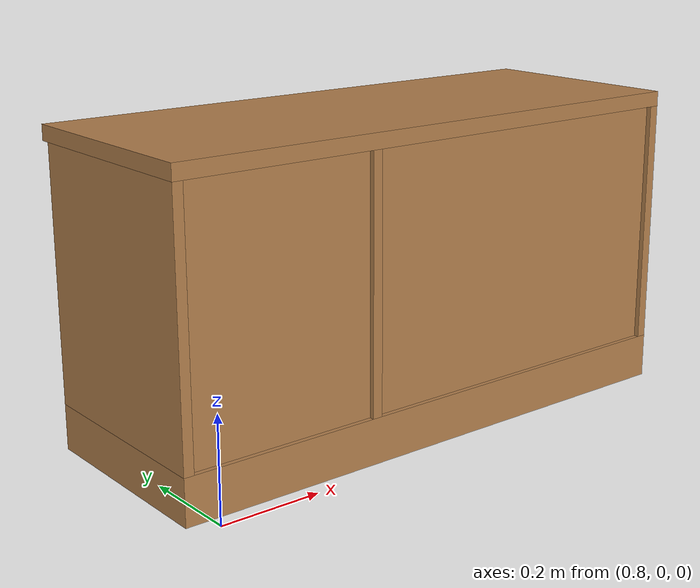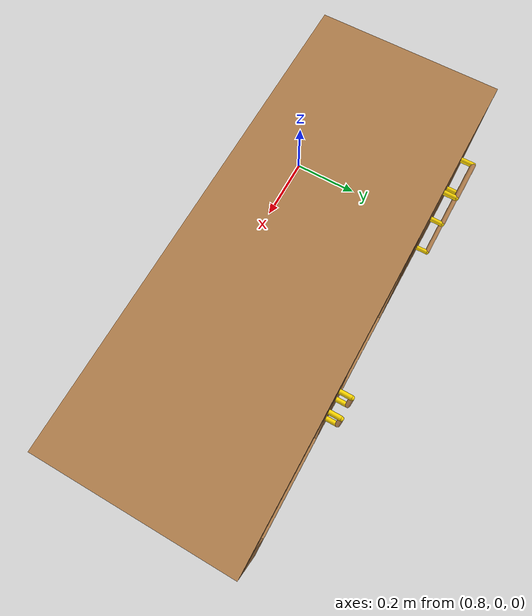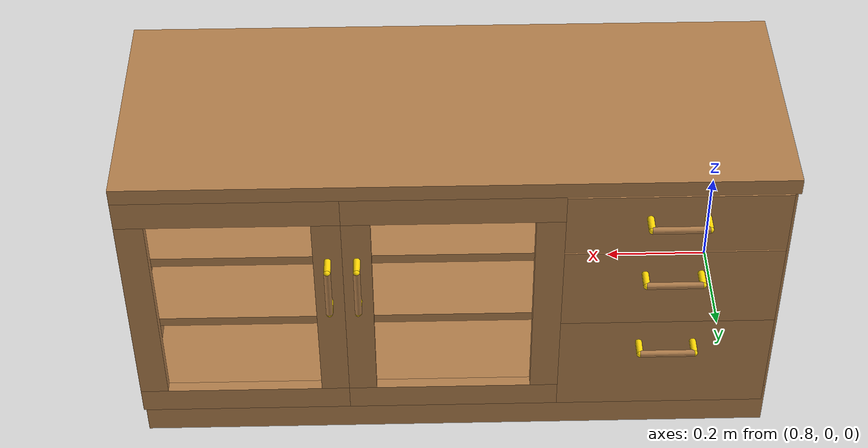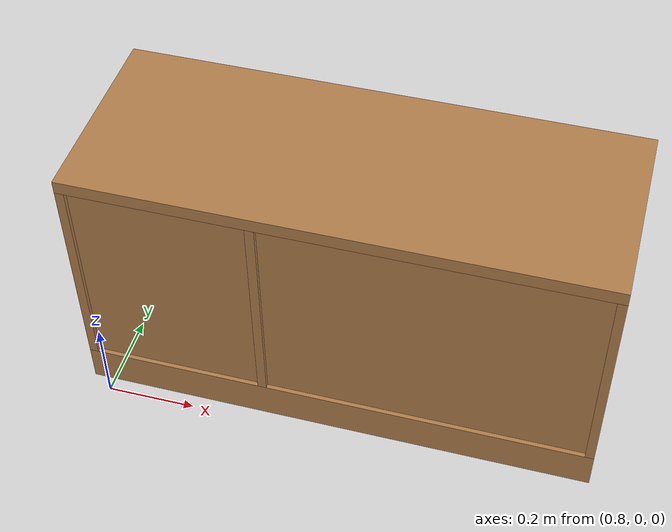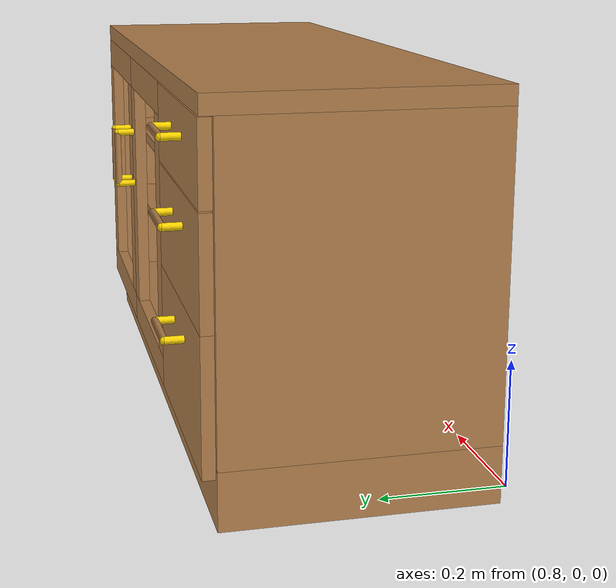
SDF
<sdf version="1.6">
 <world name="default">
  <model name="living_sideboard">
   <link name="body">
    <inertial>
     <mass>10</mass>
     <inertia><ixx>1</ixx><ixy>0</ixy><ixz>0</ixz><iyy>1</iyy><iyz>0</iyz><izz>1</izz></inertia>
    </inertial>
    <visual name="left_board">
     <pose>-0.23 0.01 0.3375 0 -0 0</pose>
     <geometry><box><size>0.42 0.02 0.495</size></box></geometry>
     <material>
      <script><uri>model://base_materials/wood/scripts/wood.material</uri><name>base_materials/wood</name></script>
     </material>
    </visual>
    <collision name="collision_left_board">
     <pose>-0.23 0.01 0.3375 0 -0 0</pose>
     <geometry><box><size>0.42 0.02 0.495</size></box></geometry>
    </collision>
    <visual name="back_board">
     <pose>-0.42 0.575 0.2925 0 -0 0</pose>
     <geometry><box><size>0.02 1.11 0.585</size></box></geometry>
     <material>
      <script><uri>model://base_materials/wood/scripts/wood.material</uri><name>base_materials/wood</name></script>
     </material>
    </visual>
    <collision name="collision_back_board">
     <pose>-0.42 0.575 0.2925 0 -0 0</pose>
     <geometry><box><size>0.02 1.11 0.585</size></box></geometry>
    </collision>
    <visual name="right_board">
     <pose>-0.23 1.14 0.3375 0 -0 0</pose>
     <geometry><box><size>0.42 0.02 0.495</size></box></geometry>
     <material>
      <script><uri>model://base_materials/wood/scripts/wood.material</uri><name>base_materials/wood</name></script>
     </material>
    </visual>
    <collision name="collision_right_board">
     <pose>-0.23 1.14 0.3375 0 -0 0</pose>
     <geometry><box><size>0.42 0.02 0.495</size></box></geometry>
    </collision>
    <visual name="center_vertical_board1">
     <pose>-0.23 0.74 0.3375 0 -0 0</pose>
     <geometry><box><size>0.42 0.02 0.495</size></box></geometry>
     <material>
      <script><uri>model://base_materials/wood/scripts/wood.material</uri><name>base_materials/wood</name></script>
     </material>
    </visual>
    <collision name="collision_center_vertical_board1">
     <pose>-0.23 0.74 0.3375 0 -0 0</pose>
     <geometry><box><size>0.42 0.02 0.495</size></box></geometry>
    </collision>
    <visual name="top_board">
     <pose>-0.22 0.575 0.6 0 -0 0</pose>
     <geometry><box><size>0.44 1.15 0.03</size></box></geometry>
     <material>
      <script><uri>model://base_materials/wood/scripts/wood.material</uri><name>base_materials/wood</name></script>
     </material>
    </visual>
    <collision name="collision_top_board">
     <pose>-0.22 0.575 0.6 0 -0 0</pose>
     <geometry><box><size>0.44 1.15 0.03</size></box></geometry>
    </collision>
    <visual name="bottom_board">
     <pose>-0.23 0.575 0.045 0 -0 0</pose>
     <geometry><box><size>0.42 1.15 0.09</size></box></geometry>
     <material>
      <script><uri>model://base_materials/wood/scripts/wood.material</uri><name>base_materials/wood</name></script>
     </material>
    </visual>
    <collision name="collision_bottom_board">
     <pose>-0.23 0.575 0.045 0 -0 0</pose>
     <geometry><box><size>0.42 1.15 0.09</size></box></geometry>
    </collision>
    <visual name="1st_shelf">
     <pose>-0.225 0.37 0.259 0 -0 0</pose>
     <geometry><box><size>0.36 0.72 0.018</size></box></geometry>
     <material>
      <script><uri>model://base_materials/wood/scripts/wood.material</uri><name>base_materials/wood</name></script>
     </material>
    </visual>
    <collision name="collision_1st_shelf">
     <pose>-0.225 0.37 0.259 0 -0 0</pose>
     <geometry><box><size>0.36 0.72 0.018</size></box></geometry>
    </collision>
    <visual name="2nd_shelf">
     <pose>-0.225 0.37 0.407 0 -0 0</pose>
     <geometry><box><size>0.36 0.72 0.018</size></box></geometry>
     <material>
      <script><uri>model://base_materials/wood/scripts/wood.material</uri><name>base_materials/wood</name></script>
     </material>
    </visual>
    <collision name="collision_2nd_shelf">
     <pose>-0.225 0.37 0.407 0 -0 0</pose>
     <geometry><box><size>0.36 0.72 0.018</size></box></geometry>
    </collision>
    <visual name="2nd_drawer">
     <pose>-0.2025 0.95 0.37 0 -0 0</pose>
     <geometry><box><size>0.405 0.38 0.17</size></box></geometry>
     <material>
      <script><uri>model://base_materials/wood/scripts/wood.material</uri><name>base_materials/wood</name></script>
     </material>
    </visual>
    <collision name="collision_2nd_drawer">
     <pose>-0.2025 0.95 0.37 0 -0 0</pose>
     <geometry><box><size>0.405 0.38 0.17</size></box></geometry>
    </collision>
    <visual name="2nd_drawer_handle_l1">
     <pose>0.015 0.9015 0.405 3.14159 1.57079 3.14159</pose>
     <geometry><cylinder><radius>0.006</radius><length>0.03</length></cylinder></geometry>
     <material>
      <ambient>1 0.84314 0 1</ambient>
      <diffuse>1 0.84314 0 1</diffuse>
      <specular>0.1 0.1 0.1 1</specular>
     </material>
    </visual>
    <collision name="collision_2nd_drawer_handle_l1">
     <pose>0.015 0.9015 0.405 3.14159 1.57079 3.14159</pose>
     <geometry><cylinder><radius>0.006</radius><length>0.03</length></cylinder></geometry>
    </collision>
    <visual name="2nd_drawer_handle_l2">
     <pose>0.03 0.9015 0.405 0 -0 0</pose>
     <geometry><sphere><radius>0.006</radius></sphere></geometry>
     <material>
      <ambient>1 0.84314 0 1</ambient>
      <diffuse>1 0.84314 0 1</diffuse>
      <specular>0.1 0.1 0.1 1</specular>
     </material>
    </visual>
    <collision name="collision_2nd_drawer_handle_l2">
     <pose>0.03 0.9015 0.405 0 -0 0</pose>
     <geometry><sphere><radius>0.006</radius></sphere></geometry>
    </collision>
    <visual name="2nd_drawer_handle_r1">
     <pose>0.015 0.9985 0.405 3.14159 1.57079 3.14159</pose>
     <geometry><cylinder><radius>0.006</radius><length>0.03</length></cylinder></geometry>
     <material>
      <ambient>1 0.84314 0 1</ambient>
      <diffuse>1 0.84314 0 1</diffuse>
      <specular>0.1 0.1 0.1 1</specular>
     </material>
    </visual>
    <collision name="collision_2nd_drawer_handle_r1">
     <pose>0.015 0.9985 0.405 3.14159 1.57079 3.14159</pose>
     <geometry><cylinder><radius>0.006</radius><length>0.03</length></cylinder></geometry>
    </collision>
    <visual name="2nd_drawer_handle_r2">
     <pose>0.03 0.9985 0.405 0 -0 0</pose>
     <geometry><sphere><radius>0.006</radius></sphere></geometry>
     <material>
      <ambient>1 0.84314 0 1</ambient>
      <diffuse>1 0.84314 0 1</diffuse>
      <specular>0.1 0.1 0.1 1</specular>
     </material>
    </visual>
    <collision name="collision_2nd_drawer_handle_r2">
     <pose>0.03 0.9985 0.405 0 -0 0</pose>
     <geometry><sphere><radius>0.006</radius></sphere></geometry>
    </collision>
    <visual name="2nd_drawer_handle_center">
     <pose>0.03 0.95 0.405 1.5708 -0 0</pose>
     <geometry><cylinder><radius>0.006</radius><length>0.097</length></cylinder></geometry>
     <material>
      <script><uri>model://base_materials/wood/scripts/wood.material</uri><name>base_materials/wood</name></script>
     </material>
    </visual>
    <collision name="collision_2nd_drawer_handle_center">
     <pose>0.03 0.95 0.405 1.5708 -0 0</pose>
     <geometry><cylinder><radius>0.006</radius><length>0.097</length></cylinder></geometry>
    </collision>
    <visual name="3rd_drawer">
     <pose>-0.2025 0.95 0.18 0 -0 0</pose>
     <geometry><box><size>0.405 0.38 0.21</size></box></geometry>
     <material>
      <script><uri>model://base_materials/wood/scripts/wood.material</uri><name>base_materials/wood</name></script>
     </material>
    </visual>
    <collision name="collision_3rd_drawer">
     <pose>-0.2025 0.95 0.18 0 -0 0</pose>
     <geometry><box><size>0.405 0.38 0.21</size></box></geometry>
    </collision>
    <visual name="3rd_drawer_handle_l1">
     <pose>0.015 0.9015 0.235 3.14159 1.57079 3.14159</pose>
     <geometry><cylinder><radius>0.006</radius><length>0.03</length></cylinder></geometry>
     <material>
      <ambient>1 0.84314 0 1</ambient>
      <diffuse>1 0.84314 0 1</diffuse>
      <specular>0.1 0.1 0.1 1</specular>
     </material>
    </visual>
    <collision name="collision_3rd_drawer_handle_l1">
     <pose>0.015 0.9015 0.235 3.14159 1.57079 3.14159</pose>
     <geometry><cylinder><radius>0.006</radius><length>0.03</length></cylinder></geometry>
    </collision>
    <visual name="3rd_drawer_handle_l2">
     <pose>0.03 0.9015 0.235 0 -0 0</pose>
     <geometry><sphere><radius>0.006</radius></sphere></geometry>
     <material>
      <ambient>1 0.84314 0 1</ambient>
      <diffuse>1 0.84314 0 1</diffuse>
      <specular>0.1 0.1 0.1 1</specular>
     </material>
    </visual>
    <collision name="collision_3rd_drawer_handle_l2">
     <pose>0.03 0.9015 0.235 0 -0 0</pose>
     <geometry><sphere><radius>0.006</radius></sphere></geometry>
    </collision>
    <visual name="3rd_drawer_handle_r1">
     <pose>0.015 0.9985 0.235 3.14159 1.57079 3.14159</pose>
     <geometry><cylinder><radius>0.006</radius><length>0.03</length></cylinder></geometry>
     <material>
      <ambient>1 0.84314 0 1</ambient>
      <diffuse>1 0.84314 0 1</diffuse>
      <specular>0.1 0.1 0.1 1</specular>
     </material>
    </visual>
    <collision name="collision_3rd_drawer_handle_r1">
     <pose>0.015 0.9985 0.235 3.14159 1.57079 3.14159</pose>
     <geometry><cylinder><radius>0.006</radius><length>0.03</length></cylinder></geometry>
    </collision>
    <visual name="3rd_drawer_handle_r2">
     <pose>0.03 0.9985 0.235 0 -0 0</pose>
     <geometry><sphere><radius>0.006</radius></sphere></geometry>
     <material>
      <ambient>1 0.84314 0 1</ambient>
      <diffuse>1 0.84314 0 1</diffuse>
      <specular>0.1 0.1 0.1 1</specular>
     </material>
    </visual>
    <collision name="collision_3rd_drawer_handle_r2">
     <pose>0.03 0.9985 0.235 0 -0 0</pose>
     <geometry><sphere><radius>0.006</radius></sphere></geometry>
    </collision>
    <visual name="3rd_drawer_handle_center">
     <pose>0.03 0.95 0.235 1.5708 -0 0</pose>
     <geometry><cylinder><radius>0.006</radius><length>0.097</length></cylinder></geometry>
     <material>
      <script><uri>model://base_materials/wood/scripts/wood.material</uri><name>base_materials/wood</name></script>
     </material>
    </visual>
    <collision name="collision_3rd_drawer_handle_center">
     <pose>0.03 0.95 0.235 1.5708 -0 0</pose>
     <geometry><cylinder><radius>0.006</radius><length>0.097</length></cylinder></geometry>
    </collision>
   </link>
   <link name="right_door">
    <visual name="right_door_left_frame">
     <pose>-0.01 0.405 0.3275 0 -0 0</pose>
     <geometry><box><size>0.02 0.05 0.405</size></box></geometry>
     <material>
      <script><uri>model://base_materials/wood/scripts/wood.material</uri><name>base_materials/wood</name></script>
     </material>
    </visual>
    <collision name="collision_right_door_left_frame">
     <pose>-0.01 0.405 0.3275 0 -0 0</pose>
     <geometry><box><size>0.02 0.05 0.405</size></box></geometry>
    </collision>
    <visual name="right_door_right_frame">
     <pose>-0.01 0.735 0.3275 0 -0 0</pose>
     <geometry><box><size>0.02 0.05 0.405</size></box></geometry>
     <material>
      <script><uri>model://base_materials/wood/scripts/wood.material</uri><name>base_materials/wood</name></script>
     </material>
    </visual>
    <collision name="collision_right_door_right_frame">
     <pose>-0.01 0.735 0.3275 0 -0 0</pose>
     <geometry><box><size>0.02 0.05 0.405</size></box></geometry>
    </collision>
    <visual name="right_door_top_frame">
     <pose>-0.01 0.57 0.5575 0 -0 0</pose>
     <geometry><box><size>0.02 0.38 0.055</size></box></geometry>
     <material>
      <script><uri>model://base_materials/wood/scripts/wood.material</uri><name>base_materials/wood</name></script>
     </material>
    </visual>
    <collision name="collision_right_door_top_frame">
     <pose>-0.01 0.57 0.5575 0 -0 0</pose>
     <geometry><box><size>0.02 0.38 0.055</size></box></geometry>
    </collision>
    <visual name="right_door_bottom_frame">
     <pose>-0.01 0.57 0.1 0 -0 0</pose>
     <geometry><box><size>0.02 0.38 0.05</size></box></geometry>
     <material>
      <script><uri>model://base_materials/wood/scripts/wood.material</uri><name>base_materials/wood</name></script>
     </material>
    </visual>
    <collision name="collision_right_door_bottom_frame">
     <pose>-0.01 0.57 0.1 0 -0 0</pose>
     <geometry><box><size>0.02 0.38 0.05</size></box></geometry>
    </collision>
    <visual name="right_door_handle_top1">
     <pose>0.015 0.405 0.4475 3.14159 1.57079 3.14159</pose>
     <geometry><cylinder><radius>0.006</radius><length>0.03</length></cylinder></geometry>
     <material>
      <ambient>1 0.84314 0 1</ambient>
      <diffuse>1 0.84314 0 1</diffuse>
      <specular>0.1 0.1 0.1 1</specular>
     </material>
    </visual>
    <collision name="collision_right_door_handle_top1">
     <pose>0.015 0.405 0.4475 3.14159 1.57079 3.14159</pose>
     <geometry><cylinder><radius>0.006</radius><length>0.03</length></cylinder></geometry>
    </collision>
    <visual name="right_door_handle_top2">
     <pose>0.03 0.405 0.4475 0 -0 0</pose>
     <geometry><sphere><radius>0.006</radius></sphere></geometry>
     <material>
      <ambient>1 0.84314 0 1</ambient>
      <diffuse>1 0.84314 0 1</diffuse>
      <specular>0.1 0.1 0.1 1</specular>
     </material>
    </visual>
    <collision name="collision_right_door_handle_top2">
     <pose>0.03 0.405 0.4475 0 -0 0</pose>
     <geometry><sphere><radius>0.006</radius></sphere></geometry>
    </collision>
    <visual name="right_door_handle_bottom1">
     <pose>0.015 0.405 0.3505 3.14159 1.57079 3.14159</pose>
     <geometry><cylinder><radius>0.006</radius><length>0.03</length></cylinder></geometry>
     <material>
      <ambient>1 0.84314 0 1</ambient>
      <diffuse>1 0.84314 0 1</diffuse>
      <specular>0.1 0.1 0.1 1</specular>
     </material>
    </visual>
    <collision name="collision_right_door_handle_bottom1">
     <pose>0.015 0.405 0.3505 3.14159 1.57079 3.14159</pose>
     <geometry><cylinder><radius>0.006</radius><length>0.03</length></cylinder></geometry>
    </collision>
    <visual name="right_door_handle_bottom2">
     <pose>0.03 0.405 0.3505 0 -0 0</pose>
     <geometry><sphere><radius>0.006</radius></sphere></geometry>
     <material>
      <ambient>1 0.84314 0 1</ambient>
      <diffuse>1 0.84314 0 1</diffuse>
      <specular>0.1 0.1 0.1 1</specular>
     </material>
    </visual>
    <collision name="collision_right_door_handle_bottom2">
     <pose>0.03 0.405 0.3505 0 -0 0</pose>
     <geometry><sphere><radius>0.006</radius></sphere></geometry>
    </collision>
    <visual name="right_door_handle_center">
     <pose>0.03 0.405 0.399 0 -0 0</pose>
     <geometry><cylinder><radius>0.006</radius><length>0.097</length></cylinder></geometry>
     <material>
      <script><uri>model://base_materials/wood/scripts/wood.material</uri><name>base_materials/wood</name></script>
     </material>
    </visual>
    <collision name="collision_right_door_handle_center">
     <pose>0.03 0.4 0.399 0 -0 0</pose>
     <geometry><cylinder><radius>0.006</radius><length>0.097</length></cylinder></geometry>
    </collision>
    <velocity_decay><linear>0</linear><angular>0</angular></velocity_decay>
    <inertial>
     <inertia><ixx>1</ixx><ixy>0</ixy><ixz>0</ixz><iyy>1</iyy><iyz>0</iyz><izz>1</izz></inertia>
     <mass>1</mass>
    </inertial>
   </link>
   <link name="left_door">
    <visual name="left_door_left_frame">
     <pose>-0.01 0.025 0.3275 0 -0 0</pose>
     <geometry><box><size>0.02 0.05 0.405</size></box></geometry>
     <material>
      <script><uri>model://base_materials/wood/scripts/wood.material</uri><name>base_materials/wood</name></script>
     </material>
    </visual>
    <collision name="collision_left_door_left_frame">
     <pose>-0.01 0.025 0.3275 0 -0 0</pose>
     <geometry><box><size>0.02 0.05 0.405</size></box></geometry>
    </collision>
    <visual name="left_door_right_frame">
     <pose>-0.01 0.355 0.3275 0 -0 0</pose>
     <geometry><box><size>0.02 0.05 0.405</size></box></geometry>
     <material>
      <script><uri>model://base_materials/wood/scripts/wood.material</uri><name>base_materials/wood</name></script>
     </material>
    </visual>
    <collision name="collision_left_door_right_frame">
     <pose>-0.01 0.355 0.3275 0 -0 0</pose>
     <geometry><box><size>0.02 0.05 0.405</size></box></geometry>
    </collision>
    <visual name="left_door_handle_top1">
     <pose>0.015 0.355 0.4475 3.14159 1.57079 3.14159</pose>
     <geometry><cylinder><radius>0.006</radius><length>0.03</length></cylinder></geometry>
     <material>
      <ambient>1 0.84314 0 1</ambient>
      <diffuse>1 0.84314 0 1</diffuse>
      <specular>0.1 0.1 0.1 1</specular>
     </material>
    </visual>
    <collision name="collision_left_door_handle_top1">
     <pose>0.015 0.355 0.4475 3.14159 1.57079 3.14159</pose>
     <geometry><cylinder><radius>0.006</radius><length>0.03</length></cylinder></geometry>
    </collision>
    <visual name="left_door_handle_top2">
     <pose>0.03 0.355 0.4475 0 -0 0</pose>
     <geometry><sphere><radius>0.006</radius></sphere></geometry>
     <material>
      <ambient>1 0.84314 0 1</ambient>
      <diffuse>1 0.84314 0 1</diffuse>
      <specular>0.1 0.1 0.1 1</specular>
     </material>
    </visual>
    <collision name="collision_left_door_handle_top2">
     <pose>0.03 0.355 0.4475 0 -0 0</pose>
     <geometry><sphere><radius>0.006</radius></sphere></geometry>
    </collision>
    <visual name="left_door_handle_bottom1">
     <pose>0.015 0.355 0.3505 3.14159 1.57079 3.14159</pose>
     <geometry><cylinder><radius>0.006</radius><length>0.03</length></cylinder></geometry>
     <material>
      <ambient>1 0.84314 0 1</ambient>
      <diffuse>1 0.84314 0 1</diffuse>
      <specular>0.1 0.1 0.1 1</specular>
     </material>
    </visual>
    <collision name="collision_left_door_handle_bottom1">
     <pose>0.015 0.355 0.3505 3.14159 1.57079 3.14159</pose>
     <geometry><cylinder><radius>0.006</radius><length>0.03</length></cylinder></geometry>
    </collision>
    <visual name="left_door_handle_bottom2">
     <pose>0.03 0.355 0.3505 0 -0 0</pose>
     <geometry><sphere><radius>0.006</radius></sphere></geometry>
     <material>
      <ambient>1 0.84314 0 1</ambient>
      <diffuse>1 0.84314 0 1</diffuse>
      <specular>0.1 0.1 0.1 1</specular>
     </material>
    </visual>
    <collision name="collision_left_door_handle_bottom2">
     <pose>0.03 0.355 0.3505 0 -0 0</pose>
     <geometry><sphere><radius>0.006</radius></sphere></geometry>
    </collision>
    <visual name="left_door_handle_center">
     <pose>0.03 0.355 0.399 0 -0 0</pose>
     <geometry><cylinder><radius>0.006</radius><length>0.097</length></cylinder></geometry>
     <material>
      <script><uri>model://base_materials/wood/scripts/wood.material</uri><name>base_materials/wood</name></script>
     </material>
    </visual>
    <collision name="collision_left_door_handle_center">
     <pose>0.03 0.355 0.399 0 -0 0</pose>
     <geometry><cylinder><radius>0.006</radius><length>0.097</length></cylinder></geometry>
    </collision>
    <visual name="left_door_top_frame">
     <pose>-0.01 0.19 0.5575 0 -0 0</pose>
     <geometry><box><size>0.02 0.38 0.055</size></box></geometry>
     <material>
      <script><uri>model://base_materials/wood/scripts/wood.material</uri><name>base_materials/wood</name></script>
     </material>
    </visual>
    <collision name="collision_left_door_top_frame">
     <pose>-0.01 0.19 0.5575 0 -0 0</pose>
     <geometry><box><size>0.02 0.38 0.055</size></box></geometry>
    </collision>
    <visual name="left_door_bottom_frame">
     <pose>-0.01 0.19 0.1 0 -0 0</pose>
     <geometry><box><size>0.02 0.38 0.05</size></box></geometry>
     <material>
      <script><uri>model://base_materials/wood/scripts/wood.material</uri><name>base_materials/wood</name></script>
     </material>
    </visual>
    <collision name="collision_left_door_bottom_frame">
     <pose>-0.01 0.19 0.1 0 -0 0</pose>
     <geometry><box><size>0.02 0.38 0.05</size></box></geometry>
    </collision>
    <inertial>
     <inertia><ixx>1</ixx><ixy>0</ixy><ixz>0</ixz><iyy>1</iyy><iyz>0</iyz><izz>1</izz></inertia>
     <mass>1</mass>
    </inertial>
   </link>
   <link name="1st_drawer">
    <visual name="1st_drawer_bottom">
     <pose>-0.2025 0.945 0.48 0 -0 0</pose>
     <geometry><box><size>0.38 0.35 0.02</size></box></geometry>
     <material>
      <script><uri>model://base_materials/wood/scripts/wood.material</uri><name>base_materials/wood</name></script>
     </material>
    </visual>
    <collision name="collision_1st_drawer_bottom">
     <pose>-0.2025 0.945 0.48 0 -0 0</pose>
     <geometry><box><size>0.38 0.35 0.02</size></box></geometry>
    </collision>
    <visual name="1st_drawer_left">
     <pose>-0.2025 0.775 0.51 0 -0 0</pose>
     <geometry><box><size>0.4 0.02 0.1</size></box></geometry>
     <material>
      <script><uri>model://base_materials/wood/scripts/wood.material</uri><name>base_materials/wood</name></script>
     </material>
    </visual>
    <collision name="collision_1st_drawer_left">
     <pose>-0.2025 0.775 0.51 0 -0 0</pose>
     <geometry><box><size>0.4 0.02 0.1</size></box></geometry>
    </collision>
    <visual name="1st_drawer_right">
     <pose>-0.2025 1.12 0.51 0 -0 0</pose>
     <geometry><box><size>0.4 0.02 0.1</size></box></geometry>
     <material>
      <script><uri>model://base_materials/wood/scripts/wood.material</uri><name>base_materials/wood</name></script>
     </material>
    </visual>
    <collision name="collision_1st_drawer_right">
     <pose>-0.2025 1.12 0.51 0 -0 0</pose>
     <geometry><box><size>0.4 0.02 0.1</size></box></geometry>
    </collision>
    <visual name="1st_drawer_front">
     <pose>-0.01 0.95 0.52 0 -0 0</pose>
     <geometry><box><size>0.02 0.38 0.125</size></box></geometry>
     <material>
      <script><uri>model://base_materials/wood/scripts/wood.material</uri><name>base_materials/wood</name></script>
     </material>
    </visual>
    <collision name="collision_1st_drawer_front">
     <pose>-0.01 0.95 0.52 0 -0 0</pose>
     <geometry><box><size>0.02 0.38 0.125</size></box></geometry>
    </collision>
    <visual name="1st_drawer_back">
     <pose>-0.4 0.95 0.51 0 -0 0</pose>
     <geometry><box><size>0.02 0.36 0.095</size></box></geometry>
     <material>
      <script><uri>model://base_materials/wood/scripts/wood.material</uri><name>base_materials/wood</name></script>
     </material>
    </visual>
    <collision name="collision_1st_drawer_back">
     <pose>-0.4 0.95 0.51 0 -0 0</pose>
     <geometry><box><size>0.02 0.36 0.095</size></box></geometry>
    </collision>
    <visual name="1st_drawer_handle_l1">
     <pose>0.015 0.9015 0.535 3.14159 1.57079 3.14159</pose>
     <geometry><cylinder><radius>0.006</radius><length>0.03</length></cylinder></geometry>
     <material>
      <ambient>1 0.84314 0 1</ambient>
      <diffuse>1 0.84314 0 1</diffuse>
      <specular>0.1 0.1 0.1 1</specular>
     </material>
    </visual>
    <collision name="collision_1st_drawer_handle_l1">
     <pose>0.015 0.9015 0.535 3.14159 1.57079 3.14159</pose>
     <geometry><cylinder><radius>0.006</radius><length>0.03</length></cylinder></geometry>
    </collision>
    <visual name="1st_drawer_handle_l2">
     <pose>0.03 0.9015 0.535 0 -0 0</pose>
     <geometry><sphere><radius>0.006</radius></sphere></geometry>
     <material>
      <ambient>1 0.84314 0 1</ambient>
      <diffuse>1 0.84314 0 1</diffuse>
      <specular>0.1 0.1 0.1 1</specular>
     </material>
    </visual>
    <collision name="collision_1st_drawer_handle_l2">
     <pose>0.03 0.9015 0.535 0 -0 0</pose>
     <geometry><sphere><radius>0.006</radius></sphere></geometry>
    </collision>
    <visual name="1st_drawer_handle_r1">
     <pose>0.015 0.9985 0.535 3.14159 1.57079 3.14159</pose>
     <geometry><cylinder><radius>0.006</radius><length>0.03</length></cylinder></geometry>
     <material>
      <ambient>1 0.84314 0 1</ambient>
      <diffuse>1 0.84314 0 1</diffuse>
      <specular>0.1 0.1 0.1 1</specular>
     </material>
    </visual>
    <collision name="collision_1st_drawer_handle_r1">
     <pose>0.015 0.9985 0.535 3.14159 1.57079 3.14159</pose>
     <geometry><cylinder><radius>0.006</radius><length>0.03</length></cylinder></geometry>
    </collision>
    <visual name="1st_drawer_handle_r2">
     <pose>0.03 0.9985 0.535 0 -0 0</pose>
     <geometry><sphere><radius>0.006</radius></sphere></geometry>
     <material>
      <ambient>1 0.84314 0 1</ambient>
      <diffuse>1 0.84314 0 1</diffuse>
      <specular>0.1 0.1 0.1 1</specular>
     </material>
    </visual>
    <collision name="collision_1st_drawer_handle_r2">
     <pose>0.03 0.9985 0.535 0 -0 0</pose>
     <geometry><sphere><radius>0.006</radius></sphere></geometry>
    </collision>
    <visual name="1st_drawer_handle_center">
     <pose>0.03 0.95 0.535 1.5708 -0 0</pose>
     <geometry><cylinder><radius>0.006</radius><length>0.097</length></cylinder></geometry>
     <material>
      <script><uri>model://base_materials/wood/scripts/wood.material</uri><name>base_materials/wood</name></script>
     </material>
    </visual>
    <collision name="collision_1st_drawer_handle_center">
     <pose>0.03 0.95 0.535 1.5708 -0 0</pose>
     <geometry><cylinder><radius>0.006</radius><length>0.097</length></cylinder></geometry>
    </collision>
    <inertial>
     <inertia><ixx>1</ixx><ixy>0</ixy><ixz>0</ixz><iyy>1</iyy><iyz>0</iyz><izz>1</izz></inertia>
     <mass>1</mass>
    </inertial>
   </link>
   <joint name="1st_drawer" type="prismatic">
    <parent>body</parent>
    <child>1st_drawer</child>
    <pose>0 0.9 0.45 0 -0 0</pose>
    <axis>
     <xyz>1 0 0</xyz>
     <limit><lower>0</lower><upper>0.3</upper></limit>
     <dynamics>
      <damping>1</damping>
      <friction>10</friction>
      <spring_reference>0</spring_reference>
      <spring_stiffness>0</spring_stiffness>
     </dynamics>
     <use_parent_model_frame>1</use_parent_model_frame>
    </axis>
    <physics><ode><cfm_damping>1</cfm_damping><limit><cfm>0</cfm><erp>0.2</erp></limit></ode></physics>
   </joint>
   <joint name="right_door" type="revolute">
    <parent>body</parent>
    <child>right_door</child>
    <pose>-0.01 0.74 0.3 0 -0 0</pose>
    <axis>
     <xyz>0 0 1</xyz>
     <limit><lower>0</lower><upper>2.61</upper></limit>
     <dynamics>
      <damping>1</damping>
      <friction>10</friction>
      <spring_reference>0</spring_reference>
      <spring_stiffness>0</spring_stiffness>
     </dynamics>
     <use_parent_model_frame>1</use_parent_model_frame>
    </axis>
    <physics><ode><cfm_damping>1</cfm_damping><limit><cfm>0</cfm><erp>0.2</erp></limit></ode></physics>
   </joint>
   <joint name="left_door" type="revolute">
    <parent>body</parent>
    <child>left_door</child>
    <pose>-0.01 0.01 0.3 0 -0 0</pose>
    <axis>
     <xyz>0 0 1</xyz>
     <limit><lower>-2.61</lower><upper>0</upper></limit>
     <dynamics>
      <damping>1</damping>
      <friction>10</friction>
      <spring_reference>0</spring_reference>
      <spring_stiffness>0</spring_stiffness>
     </dynamics>
     <use_parent_model_frame>1</use_parent_model_frame>
    </axis>
    <physics><ode><cfm_damping>1</cfm_damping><limit><cfm>0</cfm><erp>0.2</erp></limit></ode></physics>
   </joint>
   <joint name="body_to_world_joint" type="revolute">
    <parent>world</parent>
    <child>body</child>
    <axis>
     <xyz>0 0 1</xyz>
     <limit><lower>0</lower><upper>0</upper></limit>
     <use_parent_model_frame>1</use_parent_model_frame>
     <dynamics><spring_reference>0</spring_reference><spring_stiffness>0</spring_stiffness></dynamics>
    </axis>
   </joint>
   <static>0</static>
   <pose>1.9 0.47 -0 0 -0 1.5708</pose>
  </model>
 </world>
</sdf>
